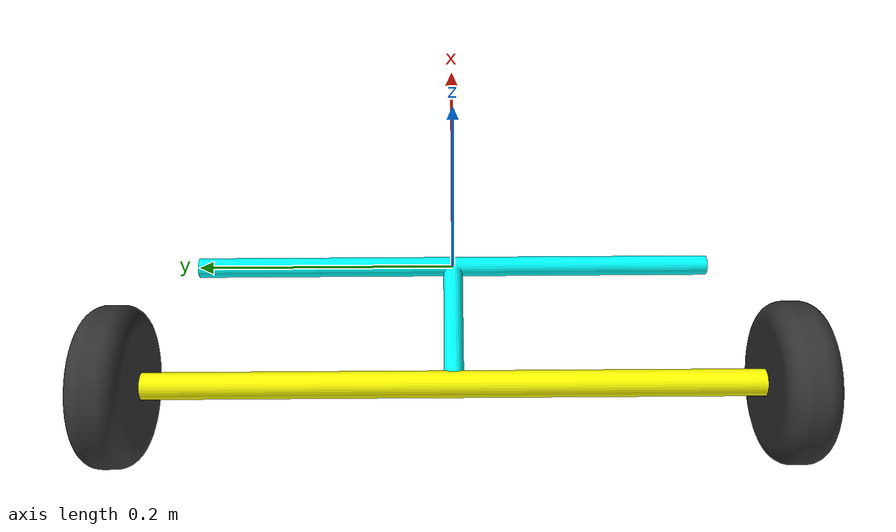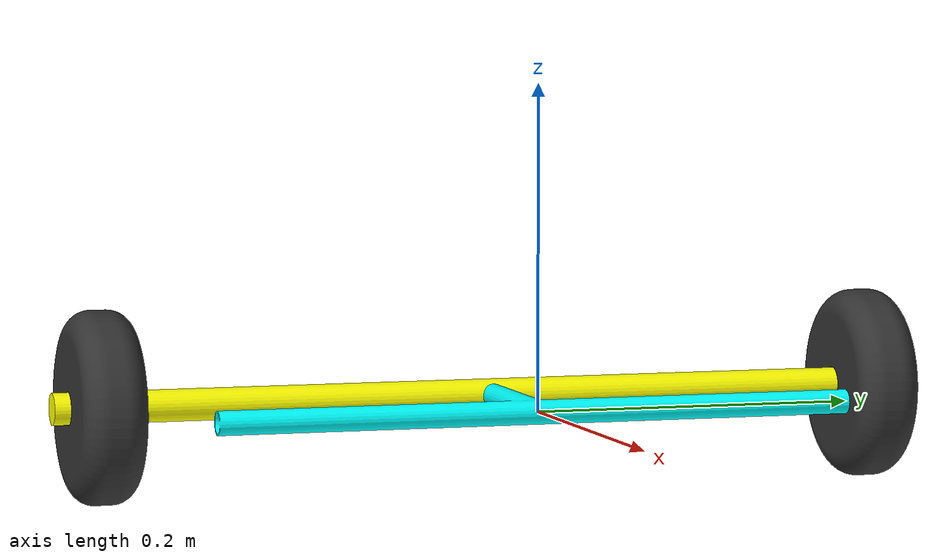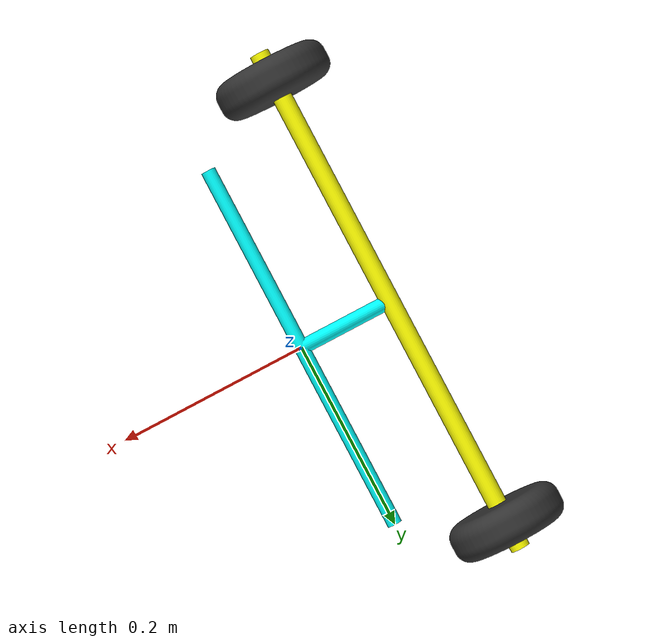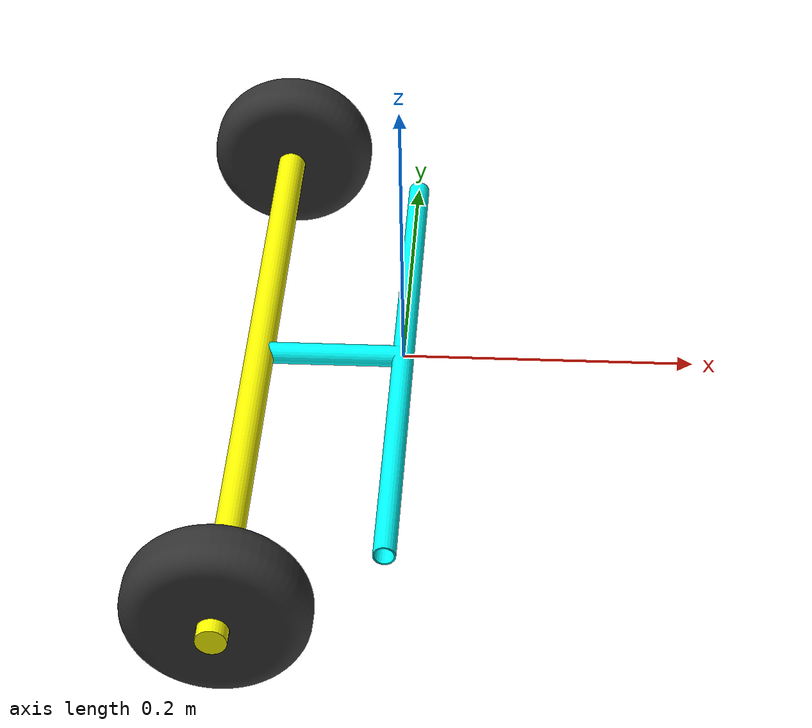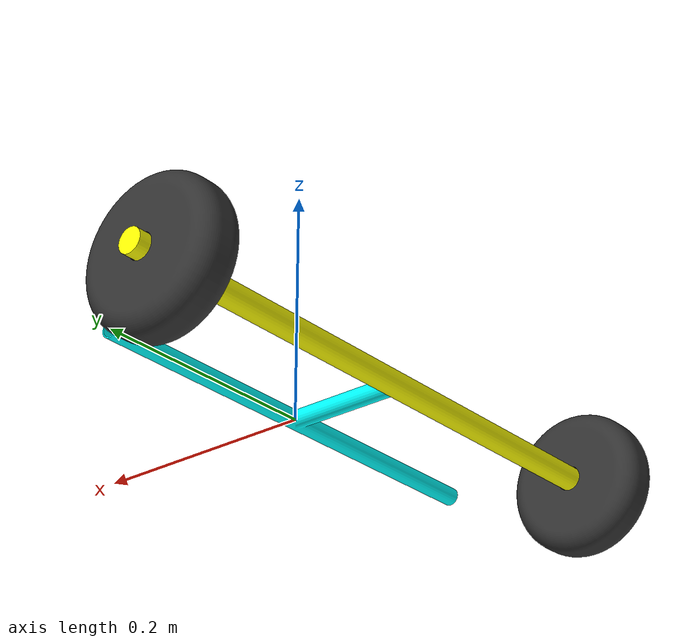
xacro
<?xml version="1.0" encoding="utf-8"?>
<robot xmlns:xacro="http://www.ros.org/wiki/xacro" name="doublebar">
	<xacro:include filename="$(find transbot_description)/urdf/mobilebase_diffdrive_6wheels_ltype_csuspp/doublebar.urdf.xacro"></xacro:include>
	<xacro:doublebar prefix="" name=""></xacro:doublebar>
</robot>

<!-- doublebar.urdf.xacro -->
<robot xmlns:xacro="http://www.ros.org/wiki/xacro" name="doublebar">
	<xacro:macro name="doublebar" params="prefix='' name='doublebar' suffix=''">
		<link name="${prefix}${name}${suffix}_">
			<inertial density="7850">
				<origin xyz="-0.008635962594894978 2.2779302906492143e-10 -4.791776038082412e-10" rpy="0 0 0"></origin>
				<mass value="0.025343882346836228"></mass>
				<inertia ixx="0.0004046535356868238" ixy="1.3055853654899202e-14" ixz="2.1266118866921296e-13" iyy="1.3845710803626174e-05" iyz="-4.3368089665789023e-14" izz="0.0004172676675035086"></inertia>
			</inertial>
			<visual>
				<geometry>
					<mesh filename="package://transbot_description/meshes/mobilebase_diffdrive_6wheels_ltype_csuspp/doublebar/_.stl" scale="1e-3 1e-3 1e-3"></mesh>
				</geometry>
				<material name="">
					<color rgba="0 1 1 1"></color>
				</material>
			</visual>
			<collision>
				<geometry>
					<mesh filename="package://transbot_description/meshes/mobilebase_diffdrive_6wheels_ltype_csuspp/doublebar/_.stl" scale="1e-3 1e-3 1e-3"></mesh>
				</geometry>
			</collision>
		</link>
		<xacro:include filename="$(find transbot_description)/urdf/mobilebase_diffdrive_6wheels_ltype_csuspp/doublebar/diff/diff.urdf.xacro"></xacro:include>
		<joint name="j/${prefix}${name}${suffix}diff/_" type="revolute">
			<origin xyz="-0.1 0.0 0.0" rpy="0.0 0.0 0.0"></origin>
			<parent link="${prefix}${name}${suffix}_"></parent>
			<child link="${prefix}${name}${suffix}diff/_"></child>
			<dynamics damping="2" friction="2"></dynamics>
			<axis xyz="1 0 0"></axis>
			<limit lower="-5" upper="5" effort="1000000.0" velocity="1000000.0"></limit>
		</joint>
		<xacro:diff prefix="${prefix}${name}${suffix}" suffix="/"></xacro:diff>
	</xacro:macro>
</robot>

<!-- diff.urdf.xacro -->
<robot xmlns:xacro="http://www.ros.org/wiki/xacro" name="diff">
	<xacro:macro name="diff" params="prefix='' name='diff' suffix=''">
		<link name="${prefix}${name}${suffix}_">
			<inertial density="7850">
				<origin xyz="-4.068478350109102e-11 -1.8579384465498233e-09 1.9870914441743804e-10" rpy="0 0 0"></origin>
				<mass value="0.17464581954603395"></mass>
				<inertia ixx="0.004568412068787589" ixy="1.320144666685382e-20" ixz="7.517120943432255e-16" iyy="8.668682956643647e-06" iyz="-2.0724169574074076e-13" izz="0.00456841207257715"></inertia>
			</inertial>
			<visual>
				<geometry>
					<mesh filename="package://transbot_description/meshes/mobilebase_diffdrive_6wheels_ltype_csuspp/doublebar/diff/_.stl" scale="1e-3 1e-3 1e-3"></mesh>
				</geometry>
				<material name="">
					<color rgba="1 1 0 1"></color>
				</material>
			</visual>
			<collision>
				<geometry>
					<mesh filename="package://transbot_description/meshes/mobilebase_diffdrive_6wheels_ltype_csuspp/doublebar/diff/_.stl" scale="1e-3 1e-3 1e-3"></mesh>
				</geometry>
			</collision>
		</link>
		<xacro:include filename="$(find transbot_description)/urdf/mobilebase_diffdrive_6wheels_ltype_csuspp/doublebar/diff/wheel.urdf.xacro"></xacro:include>
		<joint name="j/${prefix}${name}${suffix}wheel0" type="continuous">
			<origin xyz="0.0 -0.25 0.0" rpy="-1.5707963267948966 0.0 0.0"></origin>
			<parent link="${prefix}${name}${suffix}_"></parent>
			<child link="${prefix}${name}${suffix}wheel0"></child>
			<axis xyz="0 0 1"></axis>
		</joint>
		<joint name="j/${prefix}${name}${suffix}wheel1" type="continuous">
			<origin xyz="0.0 0.25 0.0" rpy="-1.5707963267948966 0.0 0.0"></origin>
			<parent link="${prefix}${name}${suffix}_"></parent>
			<child link="${prefix}${name}${suffix}wheel1"></child>
			<axis xyz="0 0 1"></axis>
		</joint>
		<xacro:wheel prefix="${prefix}${name}${suffix}" suffix="0"></xacro:wheel>
		<xacro:wheel prefix="${prefix}${name}${suffix}" suffix="1"></xacro:wheel>
	</xacro:macro>
</robot>

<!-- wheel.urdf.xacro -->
<robot xmlns:xacro="http://www.ros.org/wiki/xacro" name="wheel">
	<xacro:macro name="wheel" params="prefix='' name='wheel' suffix=''">
		<link name="${prefix}${name}${suffix}">
			<inertial density="2500">
				<origin xyz="1.5806070609371153e-09 1.4316135311553461e-09 1.5819836565310336e-09" rpy="0 0 0"></origin>
				<mass value="0.40324951987713575"></mass>
				<inertia ixx="0.0003983033404134991" ixy="-1.6095911767625574e-12" ixz="-1.0528604933629682e-12" iyy="0.0003983025825012475" iyz="-6.207533573160245e-12" izz="0.0006993442790796186"></inertia>
			</inertial>
			<visual>
				<geometry>
					<mesh filename="package://transbot_description/meshes/mobilebase_diffdrive_6wheels_ltype_csuspp/doublebar/diff/wheel.stl" scale="1e-3 1e-3 1e-3"></mesh>
				</geometry>
				<material name="">
					<color rgba="0.2 0.2 0.2 1"></color>
				</material>
			</visual>
			<collision>
				<geometry>
					<mesh filename="package://transbot_description/meshes/mobilebase_diffdrive_6wheels_ltype_csuspp/doublebar/diff/wheel.stl" scale="1e-3 1e-3 1e-3"></mesh>
				</geometry>
			</collision>
		</link>
	</xacro:macro>
</robot>
